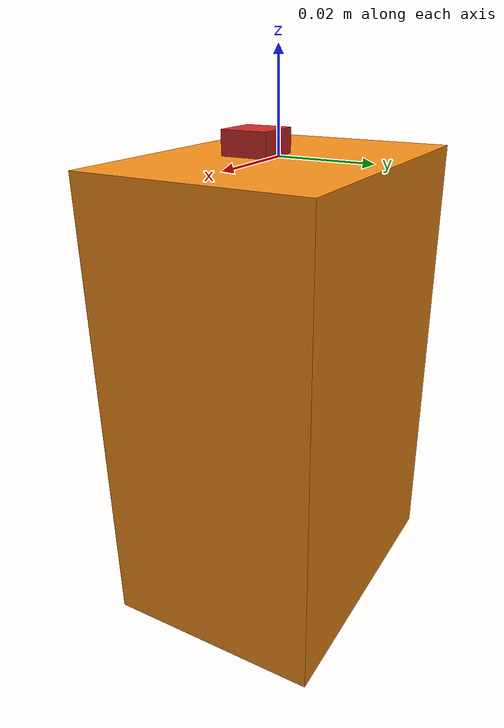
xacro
<?xml version="1.0" ?>
<!-- Revolute-Revolute Manipulator -->
<robot name="simple_rgbd_cam" xmlns:xacro="http://www.ros.org/wiki/xacro">

  <!-- Constants for robot dimensions -->
  <xacro:property name="PI" value="3.1415926535897931" />
  <xacro:property name="mass" value="1" /> <!-- arbitrary value for mass -->
  <xacro:property name="width" value="0.064" /> <!-- Square dimensions (widthxwidth) of beams -->
  <xacro:property name="height" value="0.048" /> <!-- Link 1 -->
  <xacro:property name="depth" value="0.1" /> <!-- Link 1 -->
  <xacro:property name="camera_link" value="0.01" /> <!-- Size of square 'camera' box -->

  <!-- Import all Gazebo-customization elements, including Gazebo colors -->
  <xacro:include filename="$(find extrinsics_calibrator)/urdf/simple_rgbd_cam.gazebo" />
  <!-- Import Rviz colors -->
  <xacro:include filename="$(find extrinsics_calibrator)/urdf/materials.xacro" />

  <!-- Used for fixing robot to Gazebo 'base_link' -->

  <!-- Base Link -->
  <link name="link1">
    <static>true</static>
    <collision>
      <origin xyz="0 0 -${depth/2}" rpy="0 0 0" />
      <geometry>
        <box size="${width} ${height} ${depth}" />
      </geometry>
    </collision>

    <visual>
      <origin xyz="0 0 -${depth/2}" rpy="0 0 0" />
      <geometry>
        <box size="${width} ${height} ${depth}" />
      </geometry>
      <material name="orange" />
    </visual>

  </link>

  <joint name="camera_joint" type="fixed">
    <origin xyz="0 0 0" rpy="0 -${pi/2} ${pi/2}" />
    <parent link="link1" />
    <child link="camera_link" />
  </joint>

  <!-- Camera -->
  <link name="camera_link">
    <collision>
      <origin xyz="0 0 ${camera_link/2}" rpy="0 0 0" />
      <geometry>
        <box size="${camera_link} ${camera_link} ${camera_link}" />
      </geometry>
    </collision>

    <visual>
      <origin xyz="0 0 ${camera_link/2}" rpy="0 0 0" />
      <geometry>
        <box size="${camera_link} ${camera_link} ${camera_link}" />
      </geometry>
      <material name="red" />
    </visual>

    <inertial>
      <mass value="1e-5" />
      <origin xyz="0 0 0" rpy="0 0 0" />
      <inertia ixx="1e-6" ixy="0" ixz="0" iyy="1e-6" iyz="0" izz="1e-6" />
    </inertial>
  </link>

  <!-- generate an optical frame http://www.ros.org/reps/rep-0103.html#suffix-frames
      so that ros and opencv can operate on the camera frame correctly -->
  <joint name="camera_optical_joint" type="fixed">
    <!-- these values have to be these values otherwise the gazebo camera image
        won't be aligned properly with the frame it is supposedly originating from -->
    <origin xyz="0 0 0" rpy="0 0 0" />
    <parent link="camera_link" />
    <child link="camera_link_optical" />
  </joint>

  <link name="camera_link_optical"></link>

</robot>
